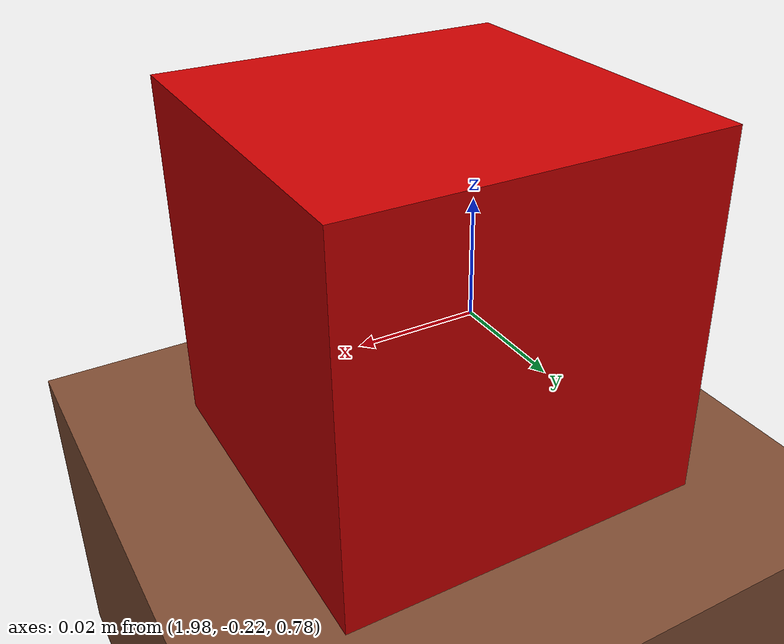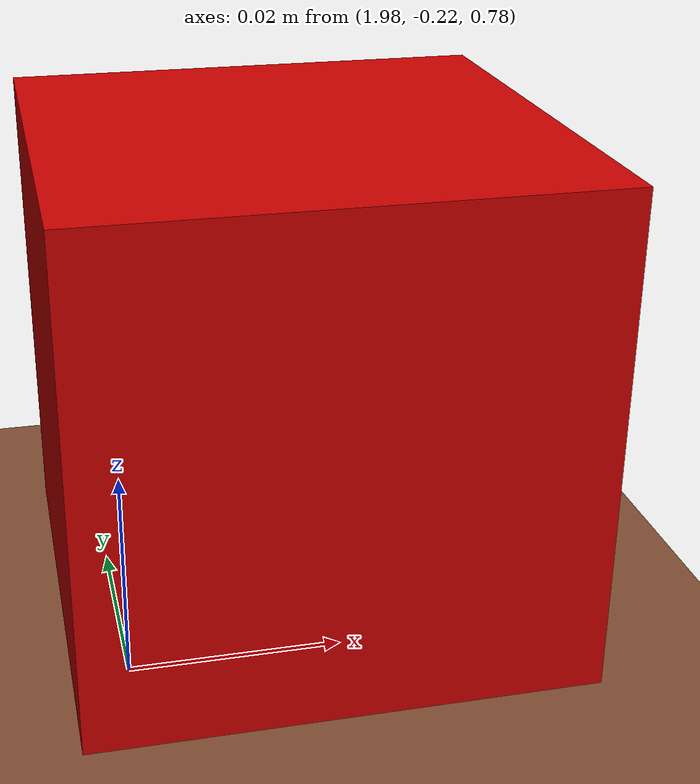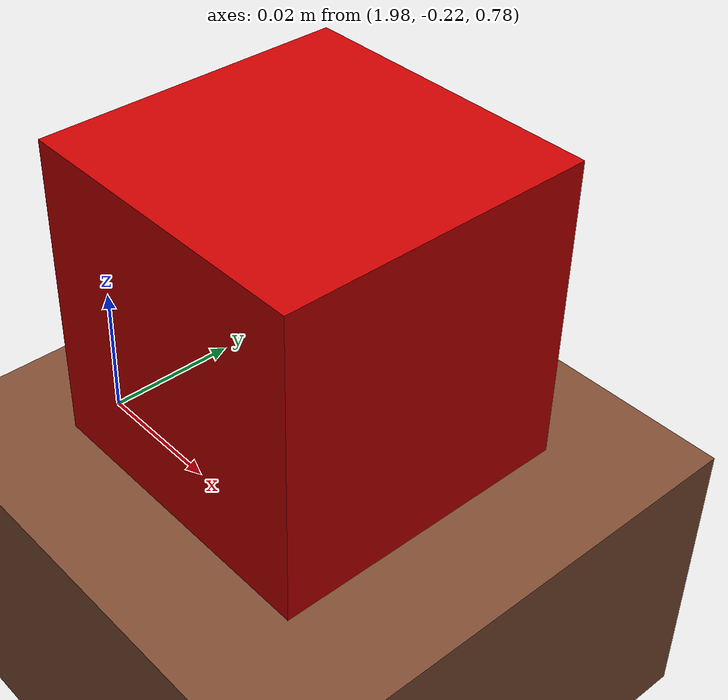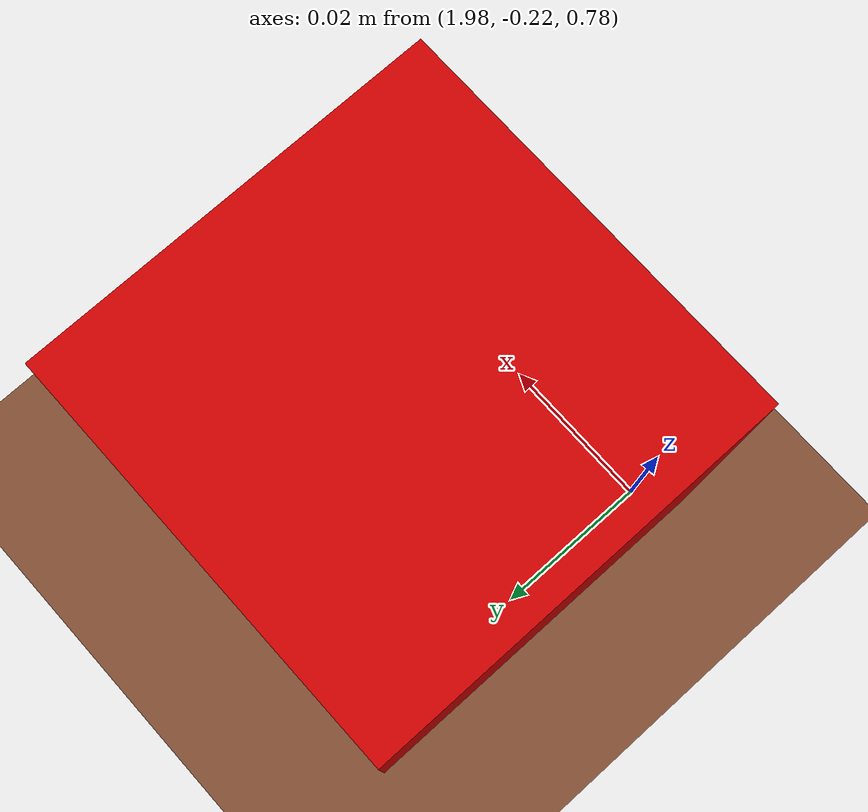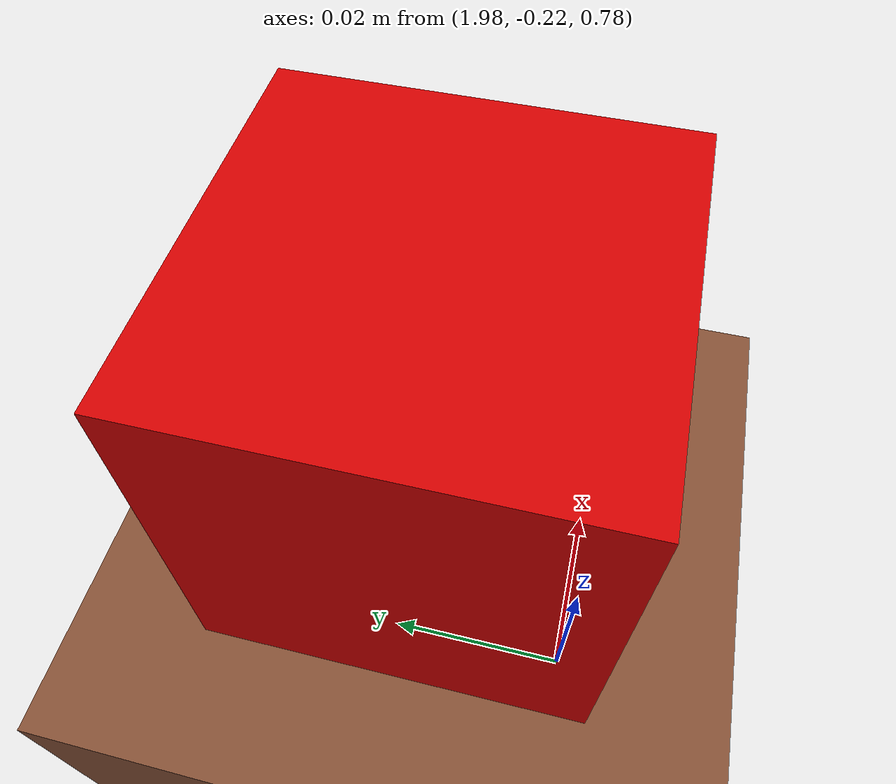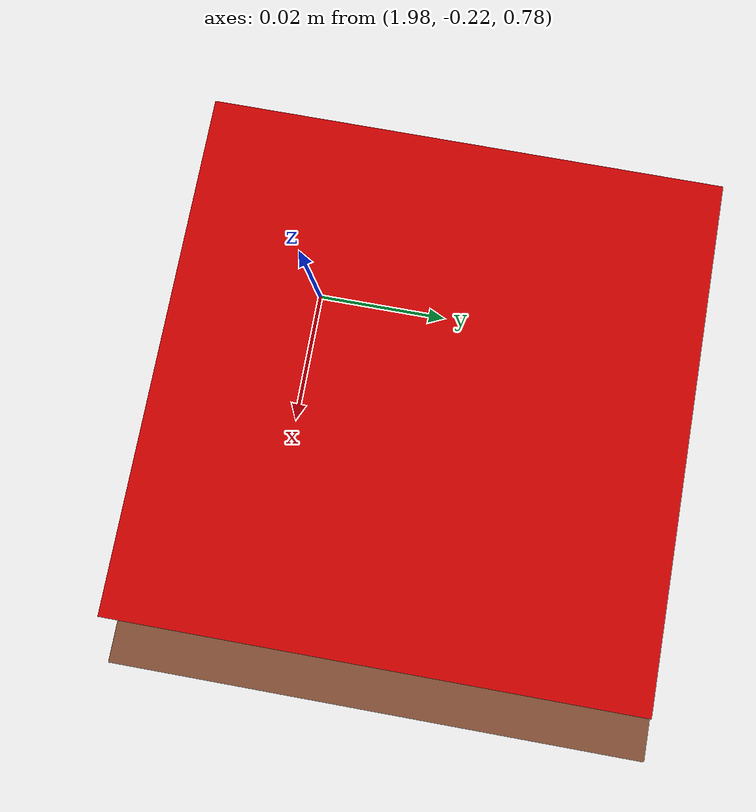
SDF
<?xml version="1.0"?>
<!--
  Household World for VLA Integration Testing  A simple indoor environment with common objects for pick-and-place tasks
-->
<sdf version="1.8">
  <world name="household_world">
    <!-- Physics Configuration -->
    <physics name="1ms" type="ode">
      <max_step_size>0.001</max_step_size>
      <real_time_factor>1.0</real_time_factor>
      <real_time_update_rate>1000.0</real_time_update_rate>
    </physics>

    <!-- Basic plugins for simulation -->
    <plugin filename="gz-sim-physics-system" name="gz::sim::systems::Physics"></plugin>
    <plugin filename="gz-sim-user-commands-system" name="gz::sim::systems::UserCommands"></plugin>
    <plugin filename="gz-sim-scene-broadcaster-system" name="gz::sim::systems::SceneBroadcaster"></plugin>

    <!-- Sun lighting -->
    <light type="directional" name="sun">
      <cast_shadows>true</cast_shadows>
      <pose>0 0 10 0 0 0</pose>
      <diffuse>0.8 0.8 0.8 1</diffuse>
      <direction>-0.5 0.1 -0.9</direction>
    </light>

    <!-- Ground plane -->
    <model name="ground_plane">
      <static>true</static>
      <link name="link">
        <collision name="collision">
          <geometry>
            <plane><normal>0 0 1</normal><size>100 100</size></plane>
          </geometry>
        </collision>
        <visual name="visual">
          <geometry>
            <plane><normal>0 0 1</normal><size>100 100</size></plane>
          </geometry>
          <material>
            <ambient>0.8 0.8 0.8 1</ambient>
            <diffuse>0.8 0.8 0.8 1</diffuse>
          </material>
        </visual>
      </link>
    </model>

    <!-- Simple table -->
    <model name="table_1">
      <static>true</static>
      <pose>2.0 0.0 0.0 0 0 0</pose>
      <link name="link">
        <collision name="surface">
          <pose>0 0 0.75 0 0 0</pose>
          <geometry>
            <box><size>1.5 0.8 0.05</size></box>
          </geometry>
        </collision>
        <visual name="surface">
          <pose>0 0 0.75 0 0 0</pose>
          <geometry>
            <box><size>1.5 0.8 0.05</size></box>
          </geometry>
          <material>
            <ambient>0.5 0.3 0.2 1</ambient>
            <diffuse>0.5 0.3 0.2 1</diffuse>
          </material>
        </visual>
      </link>
    </model>

    <!-- Red block for testing -->
    <model name="red_block_1">
      <pose>2.0 -0.2 0.8 0 0 0</pose>
      <link name="link">
        <inertial>
          <mass>0.2</mass>
          <inertia>
            <ixx>0.00013</ixx>
            <iyy>0.00013</iyy>
            <izz>0.00013</izz>
          </inertia>
        </inertial>
        <collision name="collision">
          <geometry>
            <box><size>0.05 0.05 0.05</size></box>
          </geometry>
        </collision>
        <visual name="visual">
          <geometry>
            <box><size>0.05 0.05 0.05</size></box>
          </geometry>
          <material>
            <ambient>0.8 0.0 0.0 1</ambient>
            <diffuse>0.8 0.0 0.0 1</diffuse>
          </material>
        </visual>
      </link>
    </model>

  </world>
</sdf>
